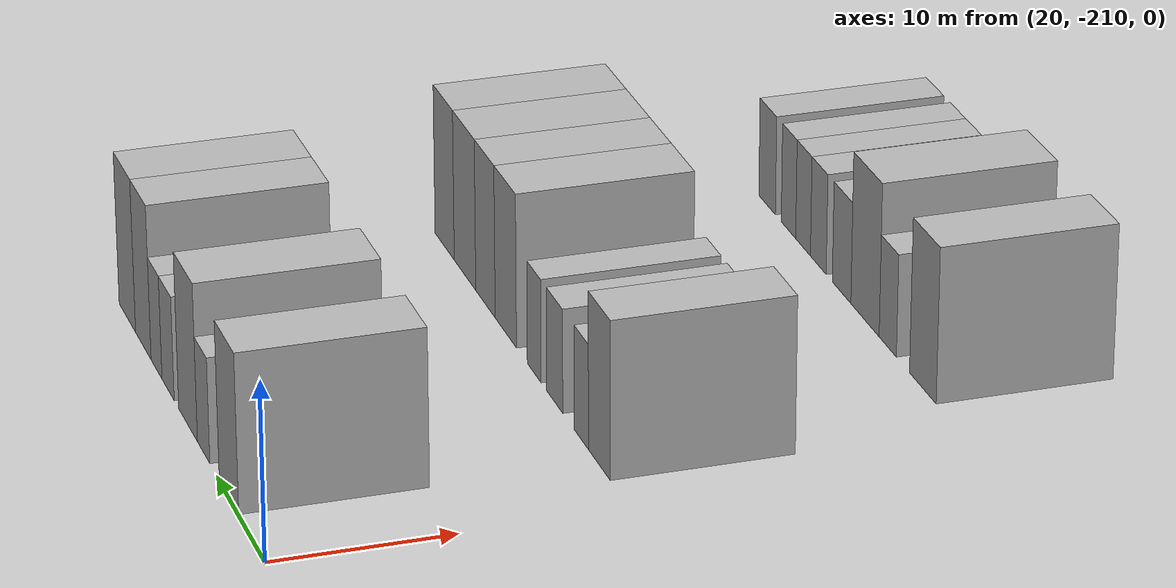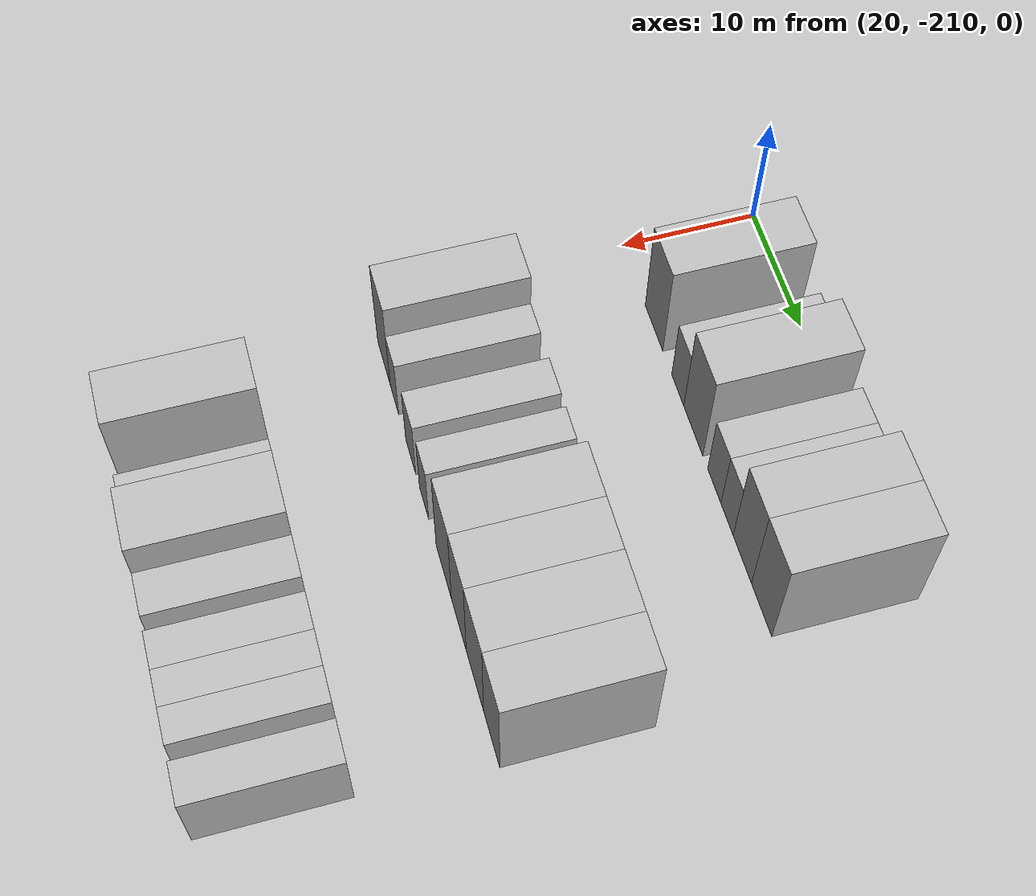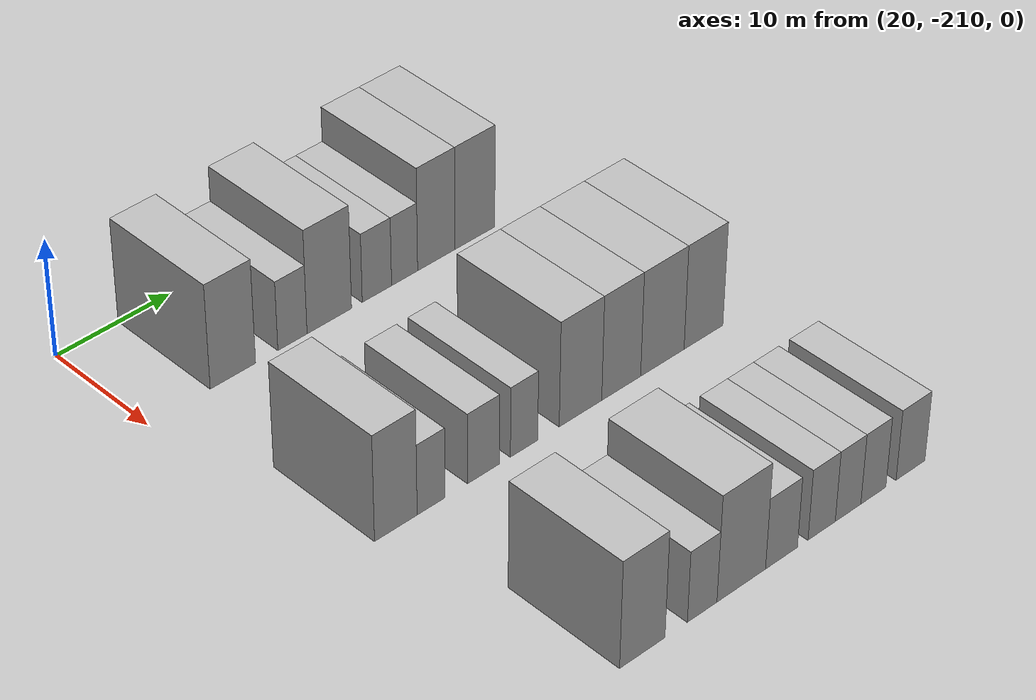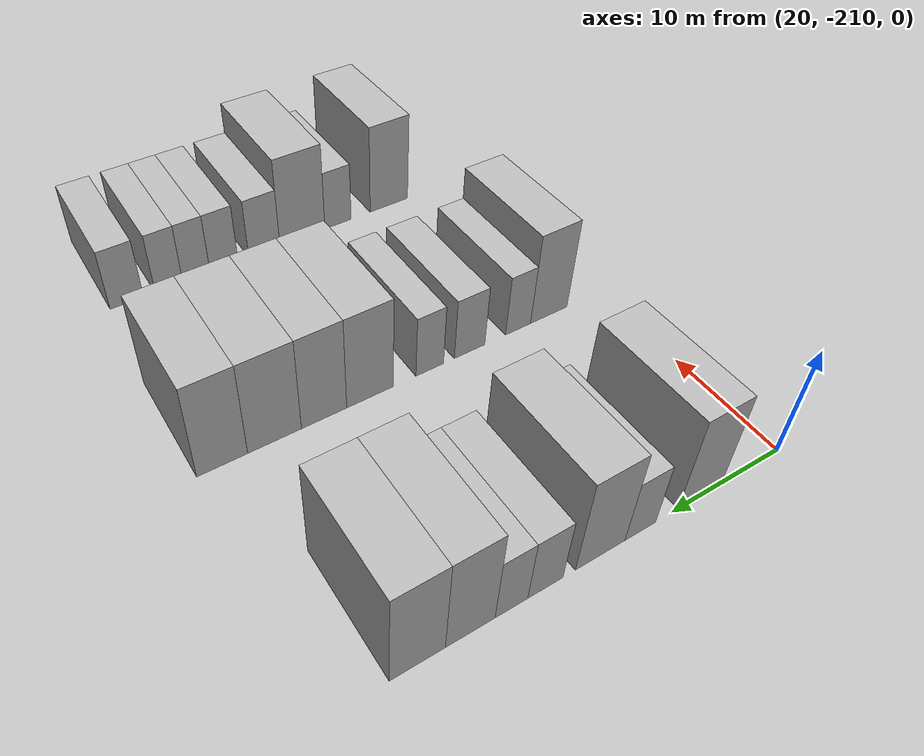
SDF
<sdf version="1.6">
 <world name="default">
  <model name="building_8">
   <static>1</static>
   <pose>25.0000 -202.5647 0 0.000000 0.000000 0.000000</pose>
   <link name="link">
    <pose>0 0 4.50 0 0 0</pose>
    <collision name="collision"><geometry><box><size>10.0000 4.0280 9.0000</size></box></geometry></collision>
    <visual name="visual">
     <cast_shadows>0</cast_shadows>
     <geometry><box><size>10.0000 4.0280 9.0000</size></box></geometry>
     <material>
      <script>
       <uri>model://HANNAS_wall/materials/scripts</uri>
       <uri>model://HANNAS_wall/materials/textures</uri>
       <name>vrc/HANNAS_wall</name>
      </script>
     </material>
    </visual>
   </link>
  </model>
  <model name="building_9">
   <static>1</static>
   <pose>25.0000 -197.2257 0 0.000000 0.000000 0.000000</pose>
   <link name="link">
    <pose>0 0 3.00 0 0 0</pose>
    <collision name="collision"><geometry><box><size>10.0000 2.6500 6.0000</size></box></geometry></collision>
    <visual name="visual">
     <cast_shadows>0</cast_shadows>
     <geometry><box><size>10.0000 2.6500 6.0000</size></box></geometry>
     <material>
      <script>
       <uri>model://HANNAS_wall/materials/scripts</uri>
       <uri>model://HANNAS_wall/materials/textures</uri>
       <name>vrc/HANNAS_wall</name>
      </script>
     </material>
    </visual>
   </link>
  </model>
  <model name="building_10">
   <static>1</static>
   <pose>25.0000 -193.8493 0 0.000000 0.000000 0.000000</pose>
   <link name="link">
    <pose>0 0 4.50 0 0 0</pose>
    <collision name="collision"><geometry><box><size>10.0000 4.1030 9.0000</size></box></geometry></collision>
    <visual name="visual">
     <cast_shadows>0</cast_shadows>
     <geometry><box><size>10.0000 4.1030 9.0000</size></box></geometry>
     <material>
      <script>
       <uri>model://HANNAS_wall/materials/scripts</uri>
       <uri>model://HANNAS_wall/materials/textures</uri>
       <name>vrc/HANNAS_wall</name>
      </script>
     </material>
    </visual>
   </link>
  </model>
  <model name="building_11">
   <static>1</static>
   <pose>25.0000 -189.4213 0 0.000000 0.000000 0.000000</pose>
   <link name="link">
    <pose>0 0 3.00 0 0 0</pose>
    <collision name="collision"><geometry><box><size>10.0000 2.7529 6.0000</size></box></geometry></collision>
    <visual name="visual">
     <cast_shadows>0</cast_shadows>
     <geometry><box><size>10.0000 2.7529 6.0000</size></box></geometry>
     <material>
      <script>
       <uri>model://HANNAS_wall/materials/scripts</uri>
       <uri>model://HANNAS_wall/materials/textures</uri>
       <name>vrc/HANNAS_wall</name>
      </script>
     </material>
    </visual>
   </link>
  </model>
  <model name="building_12">
   <static>1</static>
   <pose>25.0000 -186.8052 0 0.000000 0.000000 0.000000</pose>
   <link name="link">
    <pose>0 0 3.00 0 0 0</pose>
    <collision name="collision"><geometry><box><size>10.0000 2.4793 6.0000</size></box></geometry></collision>
    <visual name="visual">
     <cast_shadows>0</cast_shadows>
     <geometry><box><size>10.0000 2.4793 6.0000</size></box></geometry>
     <material>
      <script>
       <uri>model://HANNAS_wall/materials/scripts</uri>
       <uri>model://HANNAS_wall/materials/textures</uri>
       <name>vrc/HANNAS_wall</name>
      </script>
     </material>
    </visual>
   </link>
  </model>
  <model name="building_13">
   <static>1</static>
   <pose>25.0000 -183.7613 0 0.000000 0.000000 0.000000</pose>
   <link name="link">
    <pose>0 0 4.50 0 0 0</pose>
    <collision name="collision"><geometry><box><size>10.0000 3.6085 9.0000</size></box></geometry></collision>
    <visual name="visual">
     <cast_shadows>0</cast_shadows>
     <geometry><box><size>10.0000 3.6085 9.0000</size></box></geometry>
     <material>
      <script>
       <uri>model://HANNAS_wall/materials/scripts</uri>
       <uri>model://HANNAS_wall/materials/textures</uri>
       <name>vrc/HANNAS_wall</name>
      </script>
     </material>
    </visual>
   </link>
  </model>
  <model name="building_14">
   <static>1</static>
   <pose>25.0000 -180.0130 0 0.000000 0.000000 0.000000</pose>
   <link name="link">
    <pose>0 0 4.50 0 0 0</pose>
    <collision name="collision"><geometry><box><size>10.0000 3.8881 9.0000</size></box></geometry></collision>
    <visual name="visual">
     <cast_shadows>0</cast_shadows>
     <geometry><box><size>10.0000 3.8881 9.0000</size></box></geometry>
     <material>
      <script>
       <uri>model://HANNAS_wall/materials/scripts</uri>
       <uri>model://HANNAS_wall/materials/textures</uri>
       <name>vrc/HANNAS_wall</name>
      </script>
     </material>
    </visual>
   </link>
  </model>
  <model name="building_132">
   <static>1</static>
   <pose>44.0000 -204.7592 0 0.000000 0.000000 0.000000</pose>
   <link name="link">
    <pose>0 0 4.50 0 0 0</pose>
    <collision name="collision"><geometry><box><size>10.0000 3.7157 9.0000</size></box></geometry></collision>
    <visual name="visual">
     <cast_shadows>0</cast_shadows>
     <geometry><box><size>10.0000 3.7157 9.0000</size></box></geometry>
     <material>
      <script>
       <uri>model://HANNAS_wall/materials/scripts</uri>
       <uri>model://HANNAS_wall/materials/textures</uri>
       <name>vrc/HANNAS_wall</name>
      </script>
     </material>
    </visual>
   </link>
  </model>
  <model name="building_133">
   <static>1</static>
   <pose>44.0000 -201.6659 0 0.000000 0.000000 0.000000</pose>
   <link name="link">
    <pose>0 0 3.00 0 0 0</pose>
    <collision name="collision"><geometry><box><size>10.0000 2.4707 6.0000</size></box></geometry></collision>
    <visual name="visual">
     <cast_shadows>0</cast_shadows>
     <geometry><box><size>10.0000 2.4707 6.0000</size></box></geometry>
     <material>
      <script>
       <uri>model://HANNAS_wall/materials/scripts</uri>
       <uri>model://HANNAS_wall/materials/textures</uri>
       <name>vrc/HANNAS_wall</name>
      </script>
     </material>
    </visual>
   </link>
  </model>
  <model name="building_134">
   <static>1</static>
   <pose>44.0000 -196.9922 0 0.000000 0.000000 0.000000</pose>
   <link name="link">
    <pose>0 0 3.00 0 0 0</pose>
    <collision name="collision"><geometry><box><size>10.0000 2.8767 6.0000</size></box></geometry></collision>
    <visual name="visual">
     <cast_shadows>0</cast_shadows>
     <geometry><box><size>10.0000 2.8767 6.0000</size></box></geometry>
     <material>
      <script>
       <uri>model://HANNAS_wall/materials/scripts</uri>
       <uri>model://HANNAS_wall/materials/textures</uri>
       <name>vrc/HANNAS_wall</name>
      </script>
     </material>
    </visual>
   </link>
  </model>
  <model name="building_135">
   <static>1</static>
   <pose>44.0000 -193.3022 0 0.000000 0.000000 0.000000</pose>
   <link name="link">
    <pose>0 0 3.00 0 0 0</pose>
    <collision name="collision"><geometry><box><size>10.0000 2.5033 6.0000</size></box></geometry></collision>
    <visual name="visual">
     <cast_shadows>0</cast_shadows>
     <geometry><box><size>10.0000 2.5033 6.0000</size></box></geometry>
     <material>
      <script>
       <uri>model://HANNAS_wall/materials/scripts</uri>
       <uri>model://HANNAS_wall/materials/textures</uri>
       <name>vrc/HANNAS_wall</name>
      </script>
     </material>
    </visual>
   </link>
  </model>
  <model name="building_136">
   <static>1</static>
   <pose>44.0000 -188.0518 0 0.000000 0.000000 0.000000</pose>
   <link name="link">
    <pose>0 0 4.50 0 0 0</pose>
    <collision name="collision"><geometry><box><size>10.0000 3.9976 9.0000</size></box></geometry></collision>
    <visual name="visual">
     <cast_shadows>0</cast_shadows>
     <geometry><box><size>10.0000 3.9976 9.0000</size></box></geometry>
     <material>
      <script>
       <uri>model://HANNAS_wall/materials/scripts</uri>
       <uri>model://HANNAS_wall/materials/textures</uri>
       <name>vrc/HANNAS_wall</name>
      </script>
     </material>
    </visual>
   </link>
  </model>
  <model name="building_137">
   <static>1</static>
   <pose>44.0000 -184.1902 0 0.000000 0.000000 0.000000</pose>
   <link name="link">
    <pose>0 0 4.50 0 0 0</pose>
    <collision name="collision"><geometry><box><size>10.0000 3.7255 9.0000</size></box></geometry></collision>
    <visual name="visual">
     <cast_shadows>0</cast_shadows>
     <geometry><box><size>10.0000 3.7255 9.0000</size></box></geometry>
     <material>
      <script>
       <uri>model://HANNAS_wall/materials/scripts</uri>
       <uri>model://HANNAS_wall/materials/textures</uri>
       <name>vrc/HANNAS_wall</name>
      </script>
     </material>
    </visual>
   </link>
  </model>
  <model name="building_138">
   <static>1</static>
   <pose>44.0000 -180.2118 0 0.000000 0.000000 0.000000</pose>
   <link name="link">
    <pose>0 0 4.50 0 0 0</pose>
    <collision name="collision"><geometry><box><size>10.0000 4.2313 9.0000</size></box></geometry></collision>
    <visual name="visual">
     <cast_shadows>0</cast_shadows>
     <geometry><box><size>10.0000 4.2313 9.0000</size></box></geometry>
     <material>
      <script>
       <uri>model://HANNAS_wall/materials/scripts</uri>
       <uri>model://HANNAS_wall/materials/textures</uri>
       <name>vrc/HANNAS_wall</name>
      </script>
     </material>
    </visual>
   </link>
  </model>
  <model name="building_139">
   <static>1</static>
   <pose>44.0000 -176.1757 0 0.000000 0.000000 0.000000</pose>
   <link name="link">
    <pose>0 0 4.50 0 0 0</pose>
    <collision name="collision"><geometry><box><size>10.0000 3.8410 9.0000</size></box></geometry></collision>
    <visual name="visual">
     <cast_shadows>0</cast_shadows>
     <geometry><box><size>10.0000 3.8410 9.0000</size></box></geometry>
     <material>
      <script>
       <uri>model://HANNAS_wall/materials/scripts</uri>
       <uri>model://HANNAS_wall/materials/textures</uri>
       <name>vrc/HANNAS_wall</name>
      </script>
     </material>
    </visual>
   </link>
  </model>
  <model name="building_256">
   <static>1</static>
   <pose>63.0000 -201.2871 0 0.000000 0.000000 0.000000</pose>
   <link name="link">
    <pose>0 0 4.50 0 0 0</pose>
    <collision name="collision"><geometry><box><size>10.0000 3.9977 9.0000</size></box></geometry></collision>
    <visual name="visual">
     <cast_shadows>0</cast_shadows>
     <geometry><box><size>10.0000 3.9977 9.0000</size></box></geometry>
     <material>
      <script>
       <uri>model://HANNAS_wall/materials/scripts</uri>
       <uri>model://HANNAS_wall/materials/textures</uri>
       <name>vrc/HANNAS_wall</name>
      </script>
     </material>
    </visual>
   </link>
  </model>
  <model name="building_257">
   <static>1</static>
   <pose>63.0000 -195.9522 0 0.000000 0.000000 0.000000</pose>
   <link name="link">
    <pose>0 0 3.00 0 0 0</pose>
    <collision name="collision"><geometry><box><size>10.0000 2.6721 6.0000</size></box></geometry></collision>
    <visual name="visual">
     <cast_shadows>0</cast_shadows>
     <geometry><box><size>10.0000 2.6721 6.0000</size></box></geometry>
     <material>
      <script>
       <uri>model://HANNAS_wall/materials/scripts</uri>
       <uri>model://HANNAS_wall/materials/textures</uri>
       <name>vrc/HANNAS_wall</name>
      </script>
     </material>
    </visual>
   </link>
  </model>
  <model name="building_258">
   <static>1</static>
   <pose>63.0000 -192.3829 0 0.000000 0.000000 0.000000</pose>
   <link name="link">
    <pose>0 0 4.50 0 0 0</pose>
    <collision name="collision"><geometry><box><size>10.0000 4.4664 9.0000</size></box></geometry></collision>
    <visual name="visual">
     <cast_shadows>0</cast_shadows>
     <geometry><box><size>10.0000 4.4664 9.0000</size></box></geometry>
     <material>
      <script>
       <uri>model://HANNAS_wall/materials/scripts</uri>
       <uri>model://HANNAS_wall/materials/textures</uri>
       <name>vrc/HANNAS_wall</name>
      </script>
     </material>
    </visual>
   </link>
  </model>
  <model name="building_259">
   <static>1</static>
   <pose>63.0000 -188.6561 0 0.000000 0.000000 0.000000</pose>
   <link name="link">
    <pose>0 0 3.00 0 0 0</pose>
    <collision name="collision"><geometry><box><size>10.0000 2.9873 6.0000</size></box></geometry></collision>
    <visual name="visual">
     <cast_shadows>0</cast_shadows>
     <geometry><box><size>10.0000 2.9873 6.0000</size></box></geometry>
     <material>
      <script>
       <uri>model://HANNAS_wall/materials/scripts</uri>
       <uri>model://HANNAS_wall/materials/textures</uri>
       <name>vrc/HANNAS_wall</name>
      </script>
     </material>
    </visual>
   </link>
  </model>
  <model name="building_260">
   <static>1</static>
   <pose>63.0000 -184.8627 0 0.000000 0.000000 0.000000</pose>
   <link name="link">
    <pose>0 0 3.00 0 0 0</pose>
    <collision name="collision"><geometry><box><size>10.0000 2.5994 6.0000</size></box></geometry></collision>
    <visual name="visual">
     <cast_shadows>0</cast_shadows>
     <geometry><box><size>10.0000 2.5994 6.0000</size></box></geometry>
     <material>
      <script>
       <uri>model://HANNAS_wall/materials/scripts</uri>
       <uri>model://HANNAS_wall/materials/textures</uri>
       <name>vrc/HANNAS_wall</name>
      </script>
     </material>
    </visual>
   </link>
  </model>
  <model name="building_261">
   <static>1</static>
   <pose>63.0000 -182.3311 0 0.000000 0.000000 0.000000</pose>
   <link name="link">
    <pose>0 0 3.00 0 0 0</pose>
    <collision name="collision"><geometry><box><size>10.0000 2.4638 6.0000</size></box></geometry></collision>
    <visual name="visual">
     <cast_shadows>0</cast_shadows>
     <geometry><box><size>10.0000 2.4638 6.0000</size></box></geometry>
     <material>
      <script>
       <uri>model://HANNAS_wall/materials/scripts</uri>
       <uri>model://HANNAS_wall/materials/textures</uri>
       <name>vrc/HANNAS_wall</name>
      </script>
     </material>
    </visual>
   </link>
  </model>
  <model name="building_262">
   <static>1</static>
   <pose>63.0000 -179.8764 0 0.000000 0.000000 0.000000</pose>
   <link name="link">
    <pose>0 0 3.00 0 0 0</pose>
    <collision name="collision"><geometry><box><size>10.0000 2.4457 6.0000</size></box></geometry></collision>
    <visual name="visual">
     <cast_shadows>0</cast_shadows>
     <geometry><box><size>10.0000 2.4457 6.0000</size></box></geometry>
     <material>
      <script>
       <uri>model://HANNAS_wall/materials/scripts</uri>
       <uri>model://HANNAS_wall/materials/textures</uri>
       <name>vrc/HANNAS_wall</name>
      </script>
     </material>
    </visual>
   </link>
  </model>
  <model name="building_263">
   <static>1</static>
   <pose>63.0000 -176.2255 0 0.000000 0.000000 0.000000</pose>
   <link name="link">
    <pose>0 0 3.00 0 0 0</pose>
    <collision name="collision"><geometry><box><size>10.0000 2.8562 6.0000</size></box></geometry></collision>
    <visual name="visual">
     <cast_shadows>0</cast_shadows>
     <geometry><box><size>10.0000 2.8562 6.0000</size></box></geometry>
     <material>
      <script>
       <uri>model://HANNAS_wall/materials/scripts</uri>
       <uri>model://HANNAS_wall/materials/textures</uri>
       <name>vrc/HANNAS_wall</name>
      </script>
     </material>
    </visual>
   </link>
  </model>
 </world>
</sdf>
